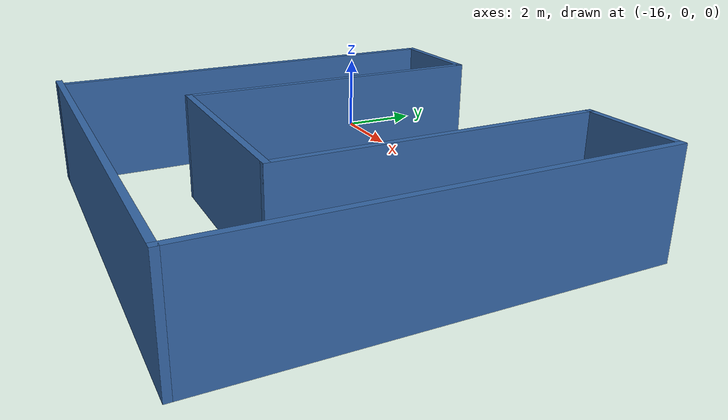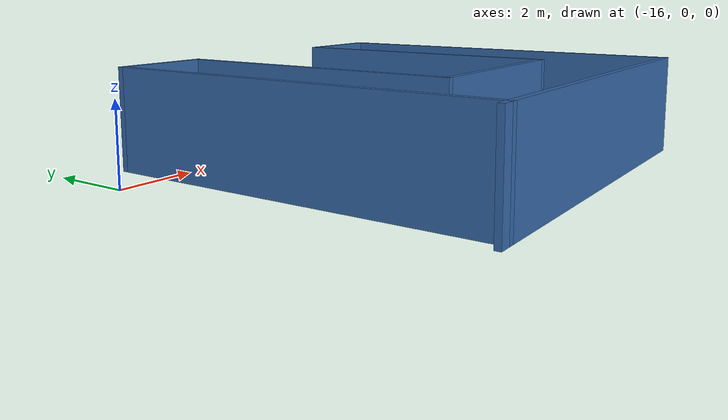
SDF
<?xml version='1.0'?>
<sdf version='1.7'>
  <model name='mybuilding'>
    <pose>-7.5457 -3.5996 0 0 -0 0</pose>
    <link name='Wall_10'>
      <collision name='Wall_10_Collision'>
        <geometry>
          <box>
            <size>10 0.15 2.5</size>
          </box>
        </geometry>
        <pose>0 0 1.25 0 -0 0</pose>
      </collision>
      <visual name='Wall_10_Visual'>
        <pose>0 0 1.25 0 -0 0</pose>
        <geometry>
          <box>
            <size>10 0.15 2.5</size>
          </box>
        </geometry>
        <material>
          <script>
            <uri>file://media/materials/scripts/gazebo.material</uri>
            <name>Gazebo/Grey</name>
          </script>
          <ambient>0.203922 0.396078 0.643137 1</ambient>
        </material>
        <meta>
          <layer>0</layer>
        </meta>
      </visual>
      <pose>2.3793 0 0 0 -0 -1.5708</pose>
    </link>
    <link name='Wall_11'>
      <collision name='Wall_11_Collision'>
        <geometry>
          <box>
            <size>10 0.15 2.5</size>
          </box>
        </geometry>
        <pose>0 0 1.25 0 -0 0</pose>
      </collision>
      <visual name='Wall_11_Visual'>
        <pose>0 0 1.25 0 -0 0</pose>
        <geometry>
          <box>
            <size>10 0.15 2.5</size>
          </box>
        </geometry>
        <material>
          <script>
            <uri>file://media/materials/scripts/gazebo.material</uri>
            <name>Gazebo/Grey</name>
          </script>
          <ambient>0.203922 0.396078 0.643137 1</ambient>
        </material>
        <meta>
          <layer>0</layer>
        </meta>
      </visual>
      <pose>-2.5457 -4.925 0 0 -0 3.14159</pose>
    </link>
    <link name='Wall_18'>
      <collision name='Wall_18_Collision'>
        <geometry>
          <box>
            <size>10 0.15 2.5</size>
          </box>
        </geometry>
        <pose>0 0 1.25 0 -0 0</pose>
      </collision>
      <visual name='Wall_18_Visual'>
        <pose>0 0 1.25 0 -0 0</pose>
        <geometry>
          <box>
            <size>10 0.15 2.5</size>
          </box>
        </geometry>
        <material>
          <script>
            <uri>file://media/materials/scripts/gazebo.material</uri>
            <name>Gazebo/Grey</name>
          </script>
          <ambient>0.203922 0.396078 0.643137 1</ambient>
        </material>
        <meta>
          <layer>0</layer>
        </meta>
      </visual>
      <pose>-7.1707 0 0 0 -0 -1.5708</pose>
    </link>
    <link name='Wall_3'>
      <collision name='Wall_3_Collision'>
        <geometry>
          <box>
            <size>2.5 0.15 2.5</size>
          </box>
        </geometry>
        <pose>0 0 1.25 0 -0 0</pose>
      </collision>
      <visual name='Wall_3_Visual'>
        <pose>0 0 1.25 0 -0 0</pose>
        <geometry>
          <box>
            <size>2.5 0.15 2.5</size>
          </box>
        </geometry>
        <material>
          <script>
            <uri>file://media/materials/scripts/gazebo.material</uri>
            <name>Gazebo/Grey</name>
          </script>
          <ambient>0.203922 0.396078 0.643137 1</ambient>
        </material>
        <meta>
          <layer>0</layer>
        </meta>
      </visual>
      <pose>-5.9957 4.925 0 0 -0 0</pose>
    </link>
    <link name='Wall_4'>
      <collision name='Wall_4_Collision'>
        <geometry>
          <box>
            <size>7.5 0.15 2.5</size>
          </box>
        </geometry>
        <pose>0 0 1.25 0 -0 0</pose>
      </collision>
      <visual name='Wall_4_Visual'>
        <pose>0 0 1.25 0 -0 0</pose>
        <geometry>
          <box>
            <size>7.5 0.15 2.5</size>
          </box>
        </geometry>
        <material>
          <script>
            <uri>file://media/materials/scripts/gazebo.material</uri>
            <name>Gazebo/Grey</name>
          </script>
          <ambient>0.203922 0.396078 0.643137 1</ambient>
        </material>
        <meta>
          <layer>0</layer>
        </meta>
      </visual>
      <pose>-4.8207 1.25 0 0 -0 -1.5708</pose>
    </link>
    <link name='Wall_5'>
      <collision name='Wall_5_Collision'>
        <geometry>
          <box>
            <size>5 0.15 2.5</size>
          </box>
        </geometry>
        <pose>0 0 1.25 0 -0 0</pose>
      </collision>
      <visual name='Wall_5_Visual'>
        <pose>0 0 1.25 0 -0 0</pose>
        <geometry>
          <box>
            <size>5 0.15 2.5</size>
          </box>
        </geometry>
        <material>
          <script>
            <uri>file://media/materials/scripts/gazebo.material</uri>
            <name>Gazebo/Grey</name>
          </script>
          <ambient>0.203922 0.396078 0.643137 1</ambient>
        </material>
        <meta>
          <layer>0</layer>
        </meta>
      </visual>
      <pose>-2.3957 -2.425 0 0 -0 0</pose>
    </link>
    <link name='Wall_6'>
      <collision name='Wall_6_Collision'>
        <geometry>
          <box>
            <size>7.5 0.15 2.5</size>
          </box>
        </geometry>
        <pose>0 0 1.25 0 -0 0</pose>
      </collision>
      <visual name='Wall_6_Visual'>
        <pose>0 0 1.25 0 -0 0</pose>
        <geometry>
          <box>
            <size>7.5 0.15 2.5</size>
          </box>
        </geometry>
        <material>
          <script>
            <uri>file://media/materials/scripts/gazebo.material</uri>
            <name>Gazebo/Grey</name>
          </script>
          <ambient>0.203922 0.396078 0.643137 1</ambient>
        </material>
        <meta>
          <layer>0</layer>
        </meta>
      </visual>
      <pose>0.0293 1.25 0 0 -0 1.5708</pose>
    </link>
    <link name='Wall_7'>
      <collision name='Wall_7_Collision'>
        <geometry>
          <box>
            <size>2.5 0.15 2.5</size>
          </box>
        </geometry>
        <pose>0 0 1.25 0 -0 0</pose>
      </collision>
      <visual name='Wall_7_Visual'>
        <pose>0 0 1.25 0 -0 0</pose>
        <geometry>
          <box>
            <size>2.5 0.15 2.5</size>
          </box>
        </geometry>
        <material>
          <script>
            <uri>file://media/materials/scripts/gazebo.material</uri>
            <name>Gazebo/Grey</name>
          </script>
          <ambient>0.203922 0.396078 0.643137 1</ambient>
        </material>
        <meta>
          <layer>0</layer>
        </meta>
      </visual>
      <pose>1.2043 4.925 0 0 -0 0</pose>
    </link>
    <static>1</static>
  </model>
</sdf>
